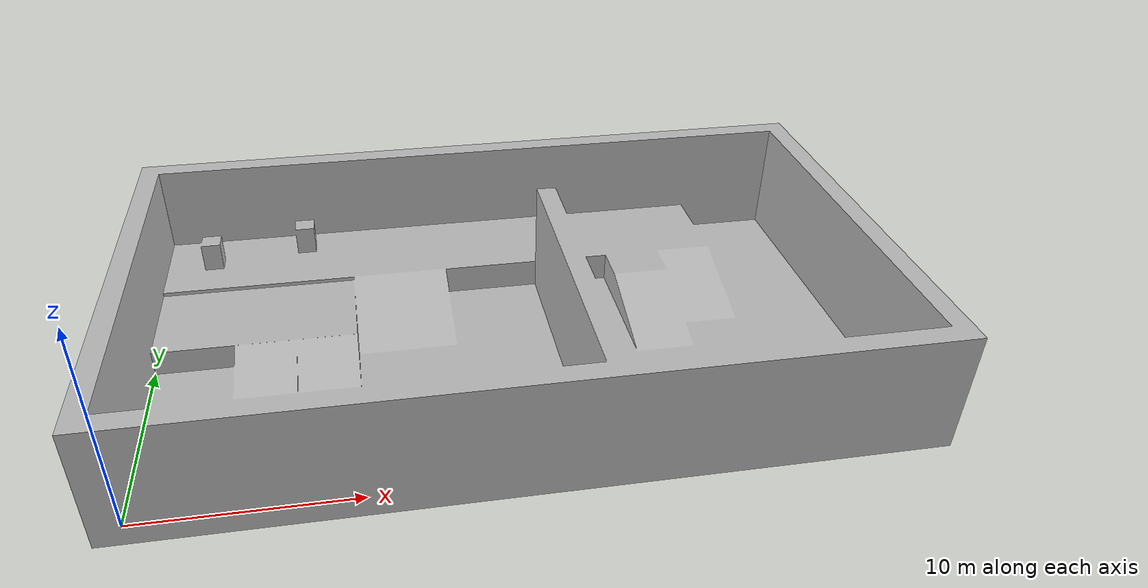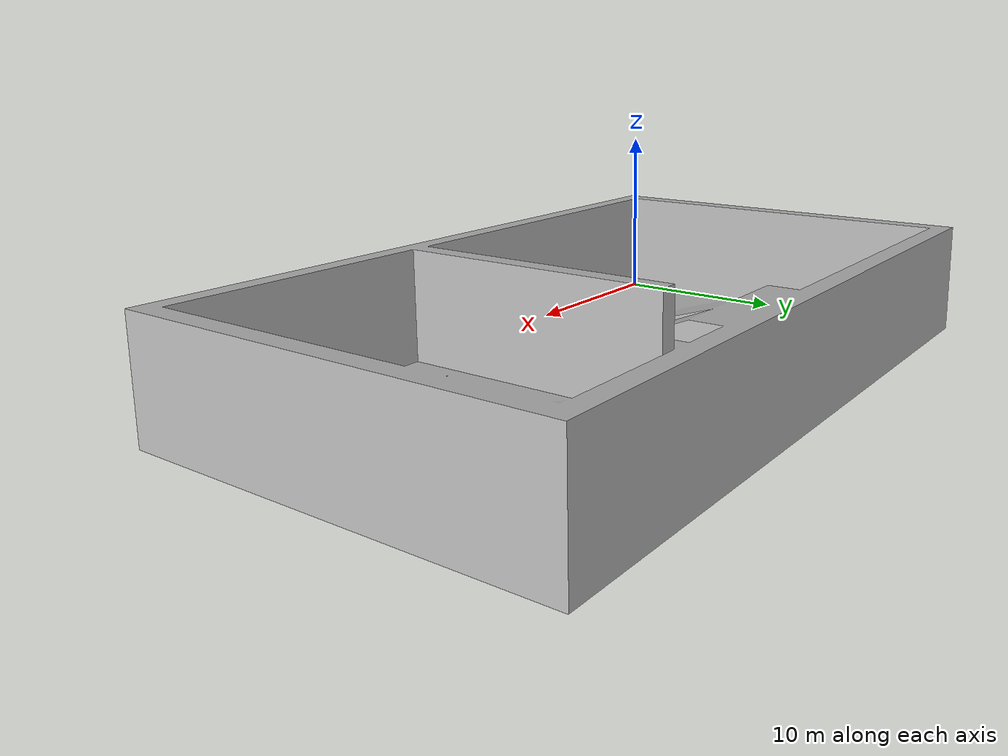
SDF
<?xml version="1.0" ?>
<sdf version="1.6">
  <model name="TESTWORLD">
    <static>true</static>
    <link name="link">
      <collision name="collision">
        <geometry>
          <mesh>
            <scale>0.001 0.001 0.001</scale>
            <uri>model://testworld/meshes/world.dae</uri>
          </mesh>
        </geometry>
      </collision>
      <visual name="visual">
        <geometry>
          <mesh>
            <scale>0.001 0.001 0.001</scale>
            <uri>model://testworld/meshes/world.dae</uri>
          </mesh>
        </geometry>
      </visual>
    </link>
  </model>
</sdf>
